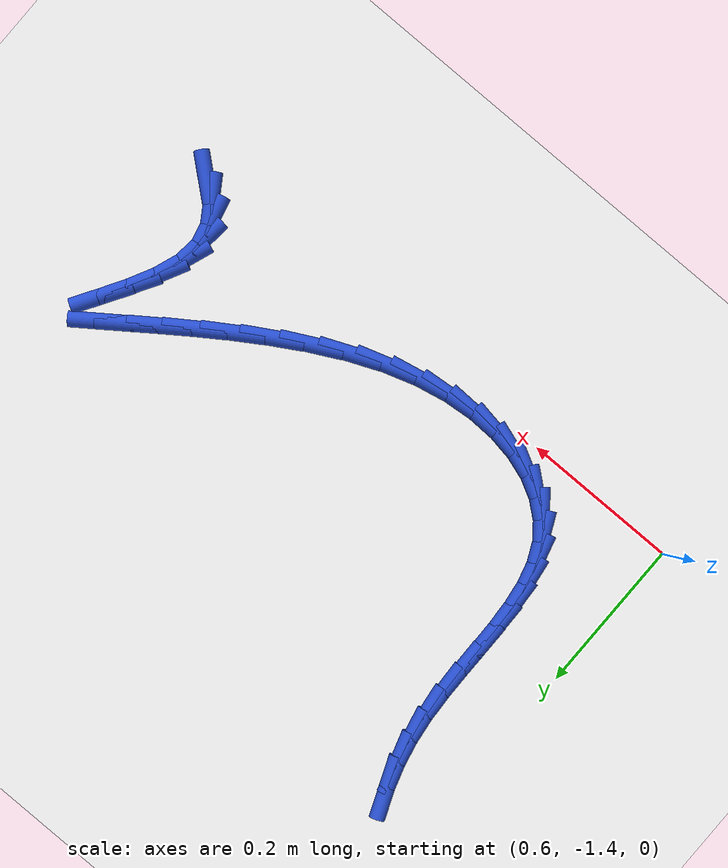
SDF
<sdf version="1.6">
 <world name="default">
  <model name="ground_plane">
   <static>1</static>
   <link name="link">
    <collision name="collision">
     <geometry><plane><normal>0 0 1</normal><size>100 100</size></plane></geometry>
     <surface><friction><ode><mu>100</mu><mu2>50</mu2></ode></friction></surface>
    </collision>
    <visual name="visual">
     <cast_shadows>0</cast_shadows>
     <geometry><plane><normal>0 0 1</normal><size>100 100</size></plane></geometry>
     <material>
      <script><uri>file://media/materials/scripts/gazebo.material</uri><name>Gazebo/WhiteGlow</name></script>
     </material>
    </visual>
   </link>
  </model>
  <model name="line">
   <link name="link_210">
    <pose>1.3137733495973583 -1.385355746056525 0.01 0 1.57 -0.6991480805496311</pose>
    <collision name="collision">
     <geometry><cylinder><radius>0.01</radius><length>0.08</length></cylinder></geometry>
    </collision>
    <visual name="visual">
     <material>
      <script><name>Gazebo/Blue</name><uri>file://media/materials/scripts/gazebo.material</uri></script>
     </material>
     <geometry><cylinder><radius>0.01</radius><length>0.08</length></cylinder></geometry>
    </visual>
   </link>
   <link name="link_211">
    <pose>1.2928873266635486 -1.3677940864188742 0.01 0 1.57 -0.9925033883800448</pose>
    <collision name="collision">
     <geometry><cylinder><radius>0.01</radius><length>0.08</length></cylinder></geometry>
    </collision>
    <visual name="visual">
     <material>
      <script><name>Gazebo/Blue</name><uri>file://media/materials/scripts/gazebo.material</uri></script>
     </material>
     <geometry><cylinder><radius>0.01</radius><length>0.08</length></cylinder></geometry>
    </visual>
   </link>
   <link name="link_212">
    <pose>1.279052864957854 -1.3465993614236886 0.01 0 1.57 -1.340597763882568</pose>
    <collision name="collision">
     <geometry><cylinder><radius>0.01</radius><length>0.08</length></cylinder></geometry>
    </collision>
    <visual name="visual">
     <material>
      <script><name>Gazebo/Blue</name><uri>file://media/materials/scripts/gazebo.material</uri></script>
     </material>
     <geometry><cylinder><radius>0.01</radius><length>0.08</length></cylinder></geometry>
    </visual>
   </link>
   <link name="link_213">
    <pose>1.2732083733319883 -1.321660503829106 0.01 0 1.57 1.4642771854873564</pose>
    <collision name="collision">
     <geometry><cylinder><radius>0.01</radius><length>0.08</length></cylinder></geometry>
    </collision>
    <visual name="visual">
     <material>
      <script><name>Gazebo/Blue</name><uri>file://media/materials/scripts/gazebo.material</uri></script>
     </material>
     <geometry><cylinder><radius>0.01</radius><length>0.08</length></cylinder></geometry>
    </visual>
   </link>
   <link name="link_214">
    <pose>1.27628677736467 -1.2928698816130333 0.01 0 1.57 1.2220391660750403</pose>
    <collision name="collision">
     <geometry><cylinder><radius>0.01</radius><length>0.08</length></cylinder></geometry>
    </collision>
    <visual name="visual">
     <material>
      <script><name>Gazebo/Blue</name><uri>file://media/materials/scripts/gazebo.material</uri></script>
     </material>
     <geometry><cylinder><radius>0.01</radius><length>0.08</length></cylinder></geometry>
    </visual>
   </link>
   <link name="link_215">
    <pose>1.2878927878740807 -1.260951977004889 0.01 0 1.57 1.0952767244429666</pose>
    <collision name="collision">
     <geometry><cylinder><radius>0.01</radius><length>0.08</length></cylinder></geometry>
    </collision>
    <visual name="visual">
     <material>
      <script><name>Gazebo/Blue</name><uri>file://media/materials/scripts/gazebo.material</uri></script>
     </material>
     <geometry><cylinder><radius>0.01</radius><length>0.08</length></cylinder></geometry>
    </visual>
   </link>
   <link name="link_216">
    <pose>1.304581829987834 -1.2285416214904292 0.01 0 1.57 1.0328141279613872</pose>
    <collision name="collision">
     <geometry><cylinder><radius>0.01</radius><length>0.08</length></cylinder></geometry>
    </collision>
    <visual name="visual">
     <material>
      <script><name>Gazebo/Blue</name><uri>file://media/materials/scripts/gazebo.material</uri></script>
     </material>
     <geometry><cylinder><radius>0.01</radius><length>0.08</length></cylinder></geometry>
    </visual>
   </link>
   <link name="link_217">
    <pose>1.3224830966136623 -1.1985406770953155 0.01 0 1.57 1.0177019408109902</pose>
    <collision name="collision">
     <geometry><cylinder><radius>0.01</radius><length>0.08</length></cylinder></geometry>
    </collision>
    <visual name="visual">
     <material>
      <script><name>Gazebo/Blue</name><uri>file://media/materials/scripts/gazebo.material</uri></script>
     </material>
     <geometry><cylinder><radius>0.01</radius><length>0.08</length></cylinder></geometry>
    </visual>
   </link>
   <link name="link_223">
    <pose>1.3033446964258157 -1.1745170221379975 0.01 0 1.57 0.6262659701347917</pose>
    <collision name="collision">
     <geometry><cylinder><radius>0.01</radius><length>0.08</length></cylinder></geometry>
    </collision>
    <visual name="visual">
     <material>
      <script><name>Gazebo/Blue</name><uri>file://media/materials/scripts/gazebo.material</uri></script>
     </material>
     <geometry><cylinder><radius>0.01</radius><length>0.08</length></cylinder></geometry>
    </visual>
   </link>
   <link name="link_224">
    <pose>1.276844317602875 -1.1936876919178672 0.01 0 1.57 0.6288622500640267</pose>
    <collision name="collision">
     <geometry><cylinder><radius>0.01</radius><length>0.08</length></cylinder></geometry>
    </collision>
    <visual name="visual">
     <material>
      <script><name>Gazebo/Blue</name><uri>file://media/materials/scripts/gazebo.material</uri></script>
     </material>
     <geometry><cylinder><radius>0.01</radius><length>0.08</length></cylinder></geometry>
    </visual>
   </link>
   <link name="link_225">
    <pose>1.245663667547245 -1.2163676731509092 0.01 0 1.57 0.6188782549000732</pose>
    <collision name="collision">
     <geometry><cylinder><radius>0.01</radius><length>0.08</length></cylinder></geometry>
    </collision>
    <visual name="visual">
     <material>
      <script><name>Gazebo/Blue</name><uri>file://media/materials/scripts/gazebo.material</uri></script>
     </material>
     <geometry><cylinder><radius>0.01</radius><length>0.08</length></cylinder></geometry>
    </visual>
   </link>
   <link name="link_226">
    <pose>1.210606082767056 -1.2413362775225023 0.01 0 1.57 0.5990989764646607</pose>
    <collision name="collision">
     <geometry><cylinder><radius>0.01</radius><length>0.08</length></cylinder></geometry>
    </collision>
    <visual name="visual">
     <material>
      <script><name>Gazebo/Blue</name><uri>file://media/materials/scripts/gazebo.material</uri></script>
     </material>
     <geometry><cylinder><radius>0.01</radius><length>0.08</length></cylinder></geometry>
    </visual>
   </link>
   <link name="link_227">
    <pose>1.1724748997704395 -1.2673728167180272 0.01 0 1.57 0.5697847107496941</pose>
    <collision name="collision">
     <geometry><cylinder><radius>0.01</radius><length>0.08</length></cylinder></geometry>
    </collision>
    <visual name="visual">
     <material>
      <script><name>Gazebo/Blue</name><uri>file://media/materials/scripts/gazebo.material</uri></script>
     </material>
     <geometry><cylinder><radius>0.01</radius><length>0.08</length></cylinder></geometry>
    </visual>
   </link>
   <link name="link_228">
    <pose>1.1320734550655274 -1.293256602422862 0.01 0 1.57 0.5296257061675592</pose>
    <collision name="collision">
     <geometry><cylinder><radius>0.01</radius><length>0.08</length></cylinder></geometry>
    </collision>
    <visual name="visual">
     <material>
      <script><name>Gazebo/Blue</name><uri>file://media/materials/scripts/gazebo.material</uri></script>
     </material>
     <geometry><cylinder><radius>0.01</radius><length>0.08</length></cylinder></geometry>
    </visual>
   </link>
   <link name="link_229">
    <pose>1.0902050851604508 -1.317766946322388 0.01 0 1.57 0.47580318310653463</pose>
    <collision name="collision">
     <geometry><cylinder><radius>0.01</radius><length>0.08</length></cylinder></geometry>
    </collision>
    <visual name="visual">
     <material>
      <script><name>Gazebo/Blue</name><uri>file://media/materials/scripts/gazebo.material</uri></script>
     </material>
     <geometry><cylinder><radius>0.01</radius><length>0.08</length></cylinder></geometry>
    </visual>
   </link>
   <link name="link_230">
    <pose>1.0476731265633406 -1.3396831601019832 0.01 0 1.57 0.40356187572348234</pose>
    <collision name="collision">
     <geometry><cylinder><radius>0.01</radius><length>0.08</length></cylinder></geometry>
    </collision>
    <visual name="visual">
     <material>
      <script><name>Gazebo/Blue</name><uri>file://media/materials/scripts/gazebo.material</uri></script>
     </material>
     <geometry><cylinder><radius>0.01</radius><length>0.08</length></cylinder></geometry>
    </visual>
   </link>
   <link name="link_231">
    <pose>1.0052809157823286 -1.3577845554470283 0.01 0 1.57 0.30938352399317653</pose>
    <collision name="collision">
     <geometry><cylinder><radius>0.01</radius><length>0.08</length></cylinder></geometry>
    </collision>
    <visual name="visual">
     <material>
      <script><name>Gazebo/Blue</name><uri>file://media/materials/scripts/gazebo.material</uri></script>
     </material>
     <geometry><cylinder><radius>0.01</radius><length>0.08</length></cylinder></geometry>
    </visual>
   </link>
   <link name="link_232">
    <pose>0.963784696659658 -1.371048735028192 0.01 0 1.57 0.20502716643623253</pose>
    <collision name="collision">
     <geometry><cylinder><radius>0.01</radius><length>0.08</length></cylinder></geometry>
    </collision>
    <visual name="visual">
     <material>
      <script><name>Gazebo/Blue</name><uri>file://media/materials/scripts/gazebo.material</uri></script>
     </material>
     <geometry><cylinder><radius>0.01</radius><length>0.08</length></cylinder></geometry>
    </visual>
   </link>
   <link name="link_233">
    <pose>0.9237206228479816 -1.379380025449123 0.01 0 1.57 0.09336599128775606</pose>
    <collision name="collision">
     <geometry><cylinder><radius>0.01</radius><length>0.08</length></cylinder></geometry>
    </collision>
    <visual name="visual">
     <material>
      <script><name>Gazebo/Blue</name><uri>file://media/materials/scripts/gazebo.material</uri></script>
     </material>
     <geometry><cylinder><radius>0.01</radius><length>0.08</length></cylinder></geometry>
    </visual>
   </link>
   <link name="link_234">
    <pose>0.8855606040719544 -1.3829532623522018 0.01 0 1.57 -0.028215931108930562</pose>
    <collision name="collision">
     <geometry><cylinder><radius>0.01</radius><length>0.08</length></cylinder></geometry>
    </collision>
    <visual name="visual">
     <material>
      <script><name>Gazebo/Blue</name><uri>file://media/materials/scripts/gazebo.material</uri></script>
     </material>
     <geometry><cylinder><radius>0.01</radius><length>0.08</length></cylinder></geometry>
    </visual>
   </link>
   <link name="link_235">
    <pose>0.8497765423807253 -1.381943313698739 0.01 0 1.57 -0.16304754497222132</pose>
    <collision name="collision">
     <geometry><cylinder><radius>0.01</radius><length>0.08</length></cylinder></geometry>
    </collision>
    <visual name="visual">
     <material>
      <script><name>Gazebo/Blue</name><uri>file://media/materials/scripts/gazebo.material</uri></script>
     </material>
     <geometry><cylinder><radius>0.01</radius><length>0.08</length></cylinder></geometry>
    </visual>
   </link>
   <link name="link_236">
    <pose>0.8168403398234412 -1.3765250474500448 0.01 0 1.57 -0.31503708425158516</pose>
    <collision name="collision">
     <geometry><cylinder><radius>0.01</radius><length>0.08</length></cylinder></geometry>
    </collision>
    <visual name="visual">
     <material>
      <script><name>Gazebo/Blue</name><uri>file://media/materials/scripts/gazebo.material</uri></script>
     </material>
     <geometry><cylinder><radius>0.01</radius><length>0.08</length></cylinder></geometry>
    </visual>
   </link>
   <link name="link_237">
    <pose>0.7872238984492493 -1.3668733315674302 0.01 0 1.57 -0.4880586179175816</pose>
    <collision name="collision">
     <geometry><cylinder><radius>0.01</radius><length>0.08</length></cylinder></geometry>
    </collision>
    <visual name="visual">
     <material>
      <script><name>Gazebo/Blue</name><uri>file://media/materials/scripts/gazebo.material</uri></script>
     </material>
     <geometry><cylinder><radius>0.01</radius><length>0.08</length></cylinder></geometry>
    </visual>
   </link>
   <link name="link_238">
    <pose>0.7613991203072967 -1.3531630340122054 0.01 0 1.57 -0.684422896203615</pose>
    <collision name="collision">
     <geometry><cylinder><radius>0.01</radius><length>0.08</length></cylinder></geometry>
    </collision>
    <visual name="visual">
     <material>
      <script><name>Gazebo/Blue</name><uri>file://media/materials/scripts/gazebo.material</uri></script>
     </material>
     <geometry><cylinder><radius>0.01</radius><length>0.08</length></cylinder></geometry>
    </visual>
   </link>
   <link name="link_239">
    <pose>0.7398379074467303 -1.3355690227456816 0.01 0 1.57 -0.9022842581245598</pose>
    <collision name="collision">
     <geometry><cylinder><radius>0.01</radius><length>0.08</length></cylinder></geometry>
    </collision>
    <visual name="visual">
     <material>
      <script><name>Gazebo/Blue</name><uri>file://media/materials/scripts/gazebo.material</uri></script>
     </material>
     <geometry><cylinder><radius>0.01</radius><length>0.08</length></cylinder></geometry>
    </visual>
   </link>
   <link name="link_240">
    <pose>0.723012161812166 -1.3142661657567107 0.01 0 1.57 -1.1242853370274497</pose>
    <collision name="collision">
     <geometry><cylinder><radius>0.01</radius><length>0.08</length></cylinder></geometry>
    </collision>
    <visual name="visual">
     <material>
      <script><name>Gazebo/Blue</name><uri>file://media/materials/scripts/gazebo.material</uri></script>
     </material>
     <geometry><cylinder><radius>0.01</radius><length>0.08</length></cylinder></geometry>
    </visual>
   </link>
   <link name="link_241">
    <pose>0.7111518214425087 -1.289493082055724 0.01 0 1.57 -1.3031591385621561</pose>
    <collision name="collision">
     <geometry><cylinder><radius>0.01</radius><length>0.08</length></cylinder></geometry>
    </collision>
    <visual name="visual">
     <material>
      <script><name>Gazebo/Blue</name><uri>file://media/materials/scripts/gazebo.material</uri></script>
     </material>
     <geometry><cylinder><radius>0.01</radius><length>0.08</length></cylinder></geometry>
    </visual>
   </link>
   <link name="link_242">
    <pose>0.7035408334367537 -1.261737633979953 0.01 0 1.57 -1.4290251615620582</pose>
    <collision name="collision">
     <geometry><cylinder><radius>0.01</radius><length>0.08</length></cylinder></geometry>
    </collision>
    <visual name="visual">
     <material>
      <script><name>Gazebo/Blue</name><uri>file://media/materials/scripts/gazebo.material</uri></script>
     </material>
     <geometry><cylinder><radius>0.01</radius><length>0.08</length></cylinder></geometry>
    </visual>
   </link>
   <link name="link_243">
    <pose>0.6992319903963156 -1.231548586898095 0.01 0 1.57 -1.5099526202157152</pose>
    <collision name="collision">
     <geometry><cylinder><radius>0.01</radius><length>0.08</length></cylinder></geometry>
    </collision>
    <visual name="visual">
     <material>
      <script><name>Gazebo/Blue</name><uri>file://media/materials/scripts/gazebo.material</uri></script>
     </material>
     <geometry><cylinder><radius>0.01</radius><length>0.08</length></cylinder></geometry>
    </visual>
   </link>
   <link name="link_244">
    <pose>0.6972780849226101 -1.199474706178849 0.01 0 1.57 -1.5544500983399279</pose>
    <collision name="collision">
     <geometry><cylinder><radius>0.01</radius><length>0.08</length></cylinder></geometry>
    </collision>
    <visual name="visual">
     <material>
      <script><name>Gazebo/Blue</name><uri>file://media/materials/scripts/gazebo.material</uri></script>
     </material>
     <geometry><cylinder><radius>0.01</radius><length>0.08</length></cylinder></geometry>
    </visual>
   </link>
   <link name="link_245">
    <pose>0.6967319096170524 -1.1660647571909126 0.01 0 1.57 -1.568291670655658</pose>
    <collision name="collision">
     <geometry><cylinder><radius>0.01</radius><length>0.08</length></cylinder></geometry>
    </collision>
    <visual name="visual">
     <material>
      <script><name>Gazebo/Blue</name><uri>file://media/materials/scripts/gazebo.material</uri></script>
     </material>
     <geometry><cylinder><radius>0.01</radius><length>0.08</length></cylinder></geometry>
    </visual>
   </link>
   <link name="link_246">
    <pose>0.6966462570810581 -1.1318675053029845 0.01 0 1.57 -1.5541774403709496</pose>
    <collision name="collision">
     <geometry><cylinder><radius>0.01</radius><length>0.08</length></cylinder></geometry>
    </collision>
    <visual name="visual">
     <material>
      <script><name>Gazebo/Blue</name><uri>file://media/materials/scripts/gazebo.material</uri></script>
     </material>
     <geometry><cylinder><radius>0.01</radius><length>0.08</length></cylinder></geometry>
    </visual>
   </link>
   <link name="link_247">
    <pose>0.6960739199160424 -1.0974317158837625 0.01 0 1.57 -1.5120742850958044</pose>
    <collision name="collision">
     <geometry><cylinder><radius>0.01</radius><length>0.08</length></cylinder></geometry>
    </collision>
    <visual name="visual">
     <material>
      <script><name>Gazebo/Blue</name><uri>file://media/materials/scripts/gazebo.material</uri></script>
     </material>
     <geometry><cylinder><radius>0.01</radius><length>0.08</length></cylinder></geometry>
    </visual>
   </link>
   <link name="link_248">
    <pose>0.6940676907234206 -1.0633061543019457 0.01 0 1.57 -1.4403333011363766</pose>
    <collision name="collision">
     <geometry><cylinder><radius>0.01</radius><length>0.08</length></cylinder></geometry>
    </collision>
    <visual name="visual">
     <material>
      <script><name>Gazebo/Blue</name><uri>file://media/materials/scripts/gazebo.material</uri></script>
     </material>
     <geometry><cylinder><radius>0.01</radius><length>0.08</length></cylinder></geometry>
    </visual>
   </link>
   <link name="link_249">
    <pose>0.6897015178575143 -1.0300294993955112 0.01 0 1.57 -1.352616830826386</pose>
    <collision name="collision">
     <geometry><cylinder><radius>0.01</radius><length>0.08</length></cylinder></geometry>
    </collision>
    <visual name="visual">
     <material>
      <script><name>Gazebo/Blue</name><uri>file://media/materials/scripts/gazebo.material</uri></script>
     </material>
     <geometry><cylinder><radius>0.01</radius><length>0.08</length></cylinder></geometry>
    </visual>
   </link>
   <link name="link_250">
    <pose>0.6825757878766405 -0.9978894375116594 0.01 0 1.57 -1.2663019965303306</pose>
    <collision name="collision">
     <geometry><cylinder><radius>0.01</radius><length>0.08</length></cylinder></geometry>
    </collision>
    <visual name="visual">
     <material>
      <script><name>Gazebo/Blue</name><uri>file://media/materials/scripts/gazebo.material</uri></script>
     </material>
     <geometry><cylinder><radius>0.01</radius><length>0.08</length></cylinder></geometry>
    </visual>
   </link>
   <link name="link_251">
    <pose>0.6728404684767407 -0.9669116285383164 0.01 0 1.57 -1.1831288709853764</pose>
    <collision name="collision">
     <geometry><cylinder><radius>0.01</radius><length>0.08</length></cylinder></geometry>
    </collision>
    <visual name="visual">
     <material>
      <script><name>Gazebo/Blue</name><uri>file://media/materials/scripts/gazebo.material</uri></script>
     </material>
     <geometry><cylinder><radius>0.01</radius><length>0.08</length></cylinder></geometry>
    </visual>
   </link>
  </model>
 </world>
</sdf>
